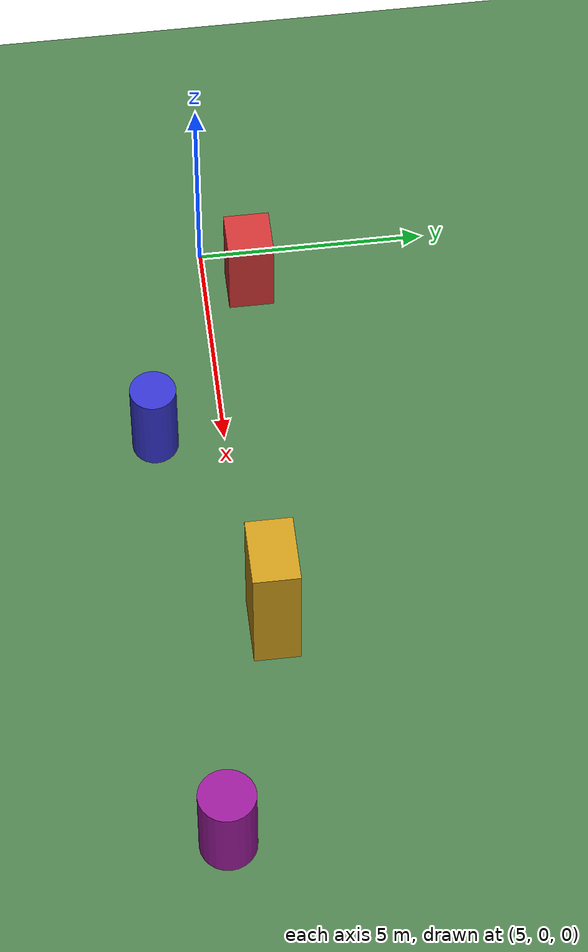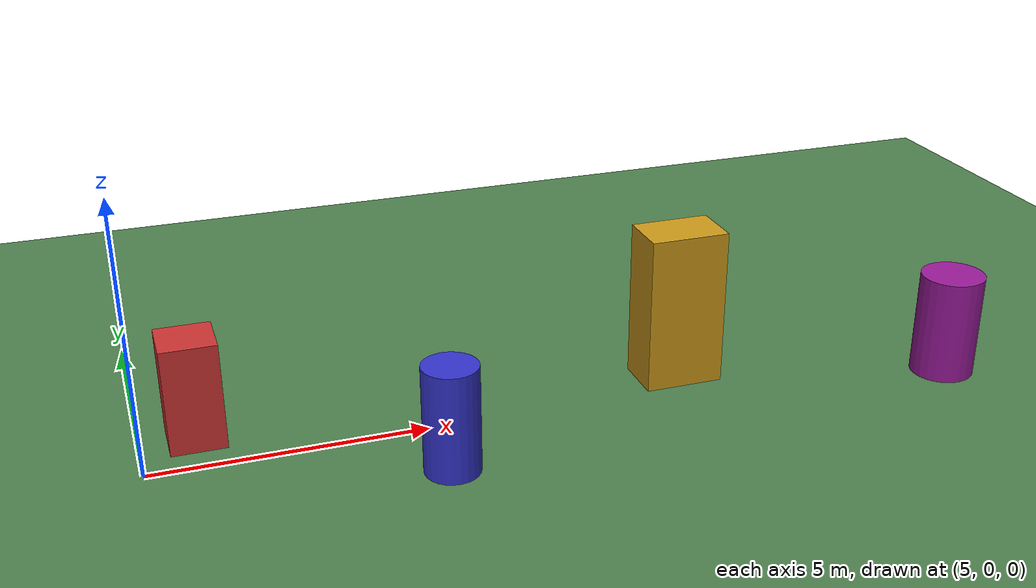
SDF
<sdf version="1.9">
 <world name="demo_world">
  <physics name="1ms" type="ignored">
   <max_step_size>0.001</max_step_size>
   <real_time_factor>1.0</real_time_factor>
  </physics>
  <plugin filename="libignition-gazebo-physics-system.so" name="ignition::gazebo::systems::Physics"/>
  <plugin filename="libignition-gazebo-sensors-system.so" name="ignition::gazebo::systems::Sensors">
   <render_engine>ogre2</render_engine>
  </plugin>
  <plugin filename="libignition-gazebo-scene-broadcaster-system.so" name="ignition::gazebo::systems::SceneBroadcaster"/>
  <plugin filename="libignition-gazebo-user-commands-system.so" name="ignition::gazebo::systems::UserCommands"/>
  <light type="directional" name="sun">
   <pose>0 0 10 0 0 0</pose>
   <diffuse>0.8 0.8 0.8 1</diffuse>
   <direction>-0.5 0.1 -0.9</direction>
  </light>
  <model name="ground_plane">
   <static>true</static>
   <link name="link">
    <collision name="collision">
     <geometry><plane><normal>0 0 1</normal><size>200 200</size></plane></geometry>
    </collision>
    <visual name="visual">
     <geometry><plane><normal>0 0 1</normal><size>200 200</size></plane></geometry>
     <material><ambient>0.3 0.5 0.3 1</ambient></material>
    </visual>
   </link>
  </model>
  <model name="obstacle_box_1">
   <static>true</static>
   <pose>6 1 1 0 0 0</pose>
   <link name="link">
    <collision name="collision"><geometry><box><size>1 1 2</size></box></geometry></collision>
    <visual name="visual">
     <geometry><box><size>1 1 2</size></box></geometry>
     <material><ambient>0.8 0.2 0.2 1</ambient></material>
    </visual>
   </link>
  </model>
  <model name="obstacle_cyl_1">
   <static>true</static>
   <pose>10 -1.5 1 0 0 0</pose>
   <link name="link">
    <collision name="collision">
     <geometry><cylinder><radius>0.5</radius><length>2</length></cylinder></geometry>
    </collision>
    <visual name="visual">
     <geometry><cylinder><radius>0.5</radius><length>2</length></cylinder></geometry>
     <material><ambient>0.2 0.2 0.8 1</ambient></material>
    </visual>
   </link>
  </model>
  <model name="obstacle_box_2">
   <static>true</static>
   <pose>15 0.5 1.5 0 0 0</pose>
   <link name="link">
    <collision name="collision"><geometry><box><size>1.5 1 3</size></box></geometry></collision>
    <visual name="visual">
     <geometry><box><size>1.5 1 3</size></box></geometry>
     <material><ambient>0.8 0.6 0.1 1</ambient></material>
    </visual>
   </link>
  </model>
  <model name="obstacle_cyl_2">
   <static>true</static>
   <pose>20 -1 1 0 0 0</pose>
   <link name="link">
    <collision name="collision">
     <geometry><cylinder><radius>0.6</radius><length>2</length></cylinder></geometry>
    </collision>
    <visual name="visual">
     <geometry><cylinder><radius>0.6</radius><length>2</length></cylinder></geometry>
     <material><ambient>0.6 0.1 0.6 1</ambient></material>
    </visual>
   </link>
  </model>
 </world>
</sdf>
